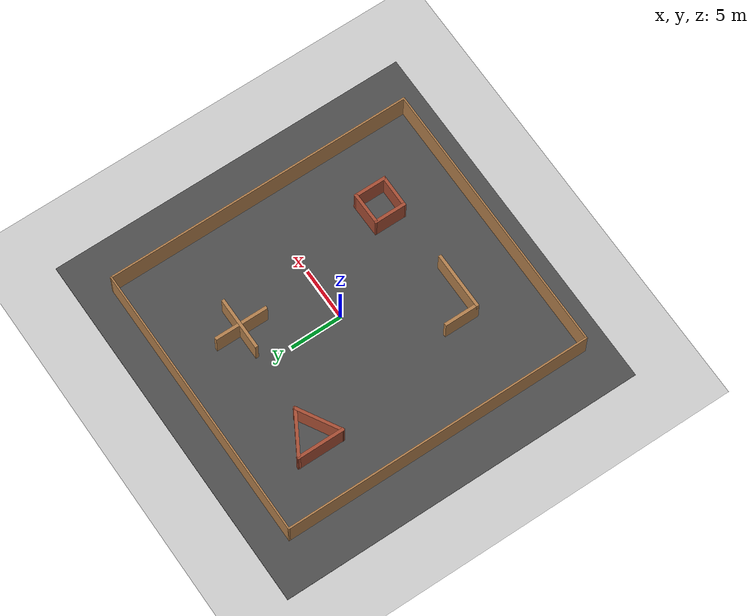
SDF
<sdf version="1.7">
 <world name="default">
  <light name="sun" type="directional">
   <pose>0 0 10 0 -0 0</pose>
   <diffuse>0.8 0.8 0.8 1</diffuse>
   <specular>0.2 0.2 0.2 1</specular>
   <attenuation>
    <range>1000</range>
    <constant>0.9</constant>
    <linear>0.01</linear>
    <quadratic>0.001</quadratic>
   </attenuation>
   <direction>-0.5 0.1 -0.9</direction>
   <spot><inner_angle>0</inner_angle><outer_angle>0</outer_angle><falloff>0</falloff></spot>
  </light>
  <model name="ground_plane">
   <static>1</static>
   <link name="link">
    <collision name="collision">
     <geometry><plane><normal>0 0 1</normal><size>409600 409600</size></plane></geometry>
     <surface><friction><ode><mu>100</mu><mu2>50</mu2></ode></friction></surface>
    </collision>
    <visual name="visual">
     <cast_shadows>0</cast_shadows>
     <geometry><plane><normal>0 0 1</normal><size>100 100</size></plane></geometry>
     <material>
      <script><uri>file://media/materials/scripts/gazebo.material</uri><name>Gazebo/Grey</name></script>
     </material>
    </visual>
    <velocity_decay><linear>0</linear><angular>0</angular></velocity_decay>
   </link>
  </model>
  <physics type="ode">
   <max_step_size>0.01</max_step_size>
   <real_time_factor>1</real_time_factor>
   <real_time_update_rate>100</real_time_update_rate>
  </physics>
  <scene><ambient>0.4 0.4 0.4 1</ambient><background>0.7 0.7 0.7 1</background><shadows>1</shadows></scene>
  <model name="asphalt_plane">
   <static>1</static>
   <link name="link">
    <collision name="collision"><geometry><box><size>35.5274 35.138 0.1</size></box></geometry></collision>
    <visual name="visual">
     <cast_shadows>0</cast_shadows>
     <geometry><box><size>35.5274 35.138 0.1</size></box></geometry>
     <material>
      <script>
       <uri>model://asphalt_plane/materials/scripts</uri>
       <uri>model://asphalt_plane/materials/textures</uri>
       <name>vrc/asphalt</name>
      </script>
     </material>
    </visual>
    <velocity_decay><linear>0</linear><angular>0</angular></velocity_decay>
   </link>
   <pose>-0.464139 0 0 0 -0 0</pose>
  </model>
  <gravity>0 0 -9.8</gravity>
  <magnetic_field>6e-06 2.3e-05 -4.2e-05</magnetic_field>
  <atmosphere type="adiabatic"/>
  <spherical_coordinates>
   <surface_model>EARTH_WGS84</surface_model>
   <latitude_deg>0</latitude_deg>
   <longitude_deg>0</longitude_deg>
   <elevation>0</elevation>
   <heading_deg>0</heading_deg>
  </spherical_coordinates>
  <model name="TCC_WALL_NEWENV">
   <pose>-0.61 -0.325 0 0 -0 0</pose>
   <link name="Wall_0">
    <collision name="Wall_0_Collision">
     <geometry><box><size>27 0.15 3</size></box></geometry>
     <pose>0 0 1.5 0 -0 0</pose>
    </collision>
    <visual name="Wall_0_Visual">
     <pose>0 0 1.5 0 -0 0</pose>
     <geometry><box><size>27 0.15 3</size></box></geometry>
     <material>
      <script><uri>file://media/materials/scripts/gazebo.material</uri><name>Gazebo/Wood</name></script>
      <ambient>1 1 1 1</ambient>
     </material>
     <meta><layer>0</layer></meta>
    </visual>
    <pose>0 -14.925 0 0 -0 0</pose>
   </link>
   <link name="Wall_4">
    <collision name="Wall_4_Collision">
     <geometry><box><size>30 0.15 3</size></box></geometry>
     <pose>0 0 1.5 0 -0 0</pose>
    </collision>
    <visual name="Wall_4_Visual">
     <pose>0 0 1.5 0 -0 0</pose>
     <geometry><box><size>30 0.15 3</size></box></geometry>
     <material>
      <script><uri>file://media/materials/scripts/gazebo.material</uri><name>Gazebo/Wood</name></script>
      <ambient>1 1 1 1</ambient>
     </material>
     <meta><layer>0</layer></meta>
    </visual>
    <pose>13.425 -0 0 0 -0 1.5708</pose>
   </link>
   <link name="Wall_6">
    <collision name="Wall_6_Collision">
     <geometry><box><size>27 0.15 3</size></box></geometry>
     <pose>0 0 1.5 0 -0 0</pose>
    </collision>
    <visual name="Wall_6_Visual">
     <pose>0 0 1.5 0 -0 0</pose>
     <geometry><box><size>27 0.15 3</size></box></geometry>
     <material>
      <script><uri>file://media/materials/scripts/gazebo.material</uri><name>Gazebo/Wood</name></script>
      <ambient>1 1 1 1</ambient>
     </material>
     <meta><layer>0</layer></meta>
    </visual>
    <pose>0 14.925 0 0 -0 3.14159</pose>
   </link>
   <link name="Wall_8">
    <collision name="Wall_8_Collision">
     <geometry><box><size>30.0003 0.15 3</size></box></geometry>
     <pose>0 0 1.5 0 -0 0</pose>
    </collision>
    <visual name="Wall_8_Visual">
     <pose>0 0 1.5 0 -0 0</pose>
     <geometry><box><size>30.0003 0.15 3</size></box></geometry>
     <material>
      <script><uri>file://media/materials/scripts/gazebo.material</uri><name>Gazebo/Wood</name></script>
      <ambient>1 1 1 1</ambient>
     </material>
     <meta><layer>0</layer></meta>
    </visual>
    <pose>-13.425 -0 0 0 -0 -1.5708</pose>
   </link>
   <static>1</static>
  </model>
  <model name="Obstacles_BigEnv">
   <pose>-0.787055 0.369097 0 0 -0 0</pose>
   <link name="Wall_12">
    <collision name="Wall_12_Collision">
     <geometry><box><size>3.15037 0.3 2.5</size></box></geometry>
     <pose>0 0 1.25 0 -0 0</pose>
    </collision>
    <visual name="Wall_12_Visual">
     <pose>0 0 1.25 0 -0 0</pose>
     <geometry><box><size>3.15037 0.3 2.5</size></box></geometry>
     <material>
      <script><uri>file://media/materials/scripts/gazebo.material</uri><name>Gazebo/Bricks</name></script>
      <ambient>1 1 1 1</ambient>
     </material>
     <meta><layer>0</layer></meta>
    </visual>
    <pose>5.53705 -8.6551 0 0 -0 1.5708</pose>
   </link>
   <link name="Wall_14">
    <collision name="Wall_14_Collision">
     <geometry><box><size>3.25123 0.3 2.5</size></box></geometry>
     <pose>0 0 1.25 0 -0 0</pose>
    </collision>
    <visual name="Wall_14_Visual">
     <pose>0 0 1.25 0 -0 0</pose>
     <geometry><box><size>3.25123 0.3 2.5</size></box></geometry>
     <material>
      <script><uri>file://media/materials/scripts/gazebo.material</uri><name>Gazebo/Bricks</name></script>
      <ambient>1 1 1 1</ambient>
     </material>
     <meta><layer>0</layer></meta>
    </visual>
    <pose>7.01255 -7.2116 0 0 -0 0.012537</pose>
   </link>
   <link name="Wall_17">
    <collision name="Wall_17_Collision">
     <geometry><box><size>3.201 0.3 2.5</size></box></geometry>
     <pose>0 0 1.25 0 -0 0</pose>
    </collision>
    <visual name="Wall_17_Visual">
     <pose>0 0 1.25 0 -0 0</pose>
     <geometry><box><size>3.201 0.3 2.5</size></box></geometry>
     <material>
      <script><uri>file://media/materials/scripts/gazebo.material</uri><name>Gazebo/Bricks</name></script>
      <ambient>1 1 1 1</ambient>
     </material>
     <meta><layer>0</layer></meta>
    </visual>
    <pose>8.48805 -8.6436 0 0 -0 -1.5708</pose>
   </link>
   <link name="Wall_19">
    <collision name="Wall_19_Collision">
     <geometry><box><size>3.25108 0.3 2.5</size></box></geometry>
     <pose>0 0 1.25 0 -0 0</pose>
    </collision>
    <visual name="Wall_19_Visual">
     <pose>0 0 1.25 0 -0 0</pose>
     <geometry><box><size>3.25108 0.3 2.5</size></box></geometry>
     <material>
      <script><uri>file://media/materials/scripts/gazebo.material</uri><name>Gazebo/Bricks</name></script>
      <ambient>1 1 1 1</ambient>
     </material>
     <meta><layer>0</layer></meta>
    </visual>
    <pose>7.01255 -10.0871 0 0 -0 -0.004744</pose>
   </link>
   <link name="Wall_22">
    <collision name="Wall_22_Collision">
     <geometry><box><size>5.599 0.3 2.5</size></box></geometry>
     <pose>0 0 1.25 0 -0 0</pose>
    </collision>
    <visual name="Wall_22_Visual">
     <pose>0 0 1.25 0 -0 0</pose>
     <geometry><box><size>5.599 0.3 2.5</size></box></geometry>
     <material>
      <script><uri>file://media/materials/scripts/gazebo.material</uri><name>Gazebo/Wood</name></script>
      <ambient>1 1 1 1</ambient>
     </material>
     <meta><layer>0</layer></meta>
    </visual>
    <pose>-2.86844 -9.9021 0 0 -0 3.14159</pose>
   </link>
   <link name="Wall_23">
    <collision name="Wall_23_Collision">
     <geometry><box><size>3.40015 0.3 2.5</size></box></geometry>
     <pose>0 0 1.25 0 -0 0</pose>
    </collision>
    <visual name="Wall_23_Visual">
     <pose>0 0 1.25 0 -0 0</pose>
     <geometry><box><size>3.40015 0.3 2.5</size></box></geometry>
     <material>
      <script><uri>file://media/materials/scripts/gazebo.material</uri><name>Gazebo/Wood</name></script>
      <ambient>1 1 1 1</ambient>
     </material>
     <meta><layer>0</layer></meta>
    </visual>
    <pose>-5.51795 -8.3521 0 0 -0 1.5708</pose>
   </link>
   <link name="Wall_29">
    <collision name="Wall_29_Collision">
     <geometry><box><size>4.65 0.3 2.5</size></box></geometry>
     <pose>0 0 1.25 0 -0 0</pose>
    </collision>
    <visual name="Wall_29_Visual">
     <pose>0 0 1.25 0 -0 0</pose>
     <geometry><box><size>4.65 0.3 2.5</size></box></geometry>
     <material>
      <script><uri>file://media/materials/scripts/gazebo.material</uri><name>Gazebo/Bricks</name></script>
      <ambient>1 1 1 1</ambient>
     </material>
     <meta><layer>0</layer></meta>
    </visual>
    <pose>-8.43495 7.8649 0 0 -0 1.5708</pose>
   </link>
   <link name="Wall_31">
    <collision name="Wall_31_Collision">
     <geometry><box><size>4.64999 0.3 2.5</size></box></geometry>
     <pose>0 0 1.25 0 -0 0</pose>
    </collision>
    <visual name="Wall_31_Visual">
     <pose>0 0 1.25 0 -0 0</pose>
     <geometry><box><size>4.64999 0.3 2.5</size></box></geometry>
     <material>
      <script><uri>file://media/materials/scripts/gazebo.material</uri><name>Gazebo/Bricks</name></script>
      <ambient>1 1 1 1</ambient>
     </material>
     <meta><layer>0</layer></meta>
    </visual>
    <pose>-6.55145 6.7774 0 0 -0 0.523623</pose>
   </link>
   <link name="Wall_33">
    <collision name="Wall_33_Collision">
     <geometry><box><size>4.64982 0.3 2.5</size></box></geometry>
     <pose>0 0 1.25 0 -0 0</pose>
    </collision>
    <visual name="Wall_33_Visual">
     <pose>0 0 1.25 0 -0 0</pose>
     <geometry><box><size>4.64982 0.3 2.5</size></box></geometry>
     <material>
      <script><uri>file://media/materials/scripts/gazebo.material</uri><name>Gazebo/Bricks</name></script>
      <ambient>1 1 1 1</ambient>
     </material>
     <meta><layer>0</layer></meta>
    </visual>
    <pose>-6.55145 8.9524 0 0 -0 -0.523623</pose>
   </link>
   <link name="Wall_35">
    <collision name="Wall_35_Collision">
     <geometry><box><size>5.15036 0.3 2.5</size></box></geometry>
     <pose>0 0 1.25 0 -0 0</pose>
    </collision>
    <visual name="Wall_35_Visual">
     <pose>0 0 1.25 0 -0 0</pose>
     <geometry><box><size>5.15036 0.3 2.5</size></box></geometry>
     <material>
      <script><uri>file://media/materials/scripts/gazebo.material</uri><name>Gazebo/Wood</name></script>
      <ambient>1 1 1 1</ambient>
     </material>
     <meta><layer>0</layer></meta>
    </visual>
    <pose>4.19405 7.3829 0 0 -0 1.5708</pose>
   </link>
   <link name="Wall_37">
    <collision name="Wall_37_Collision">
     <geometry><box><size>5.14995 0.3 2.5</size></box></geometry>
     <pose>0 0 1.25 0 -0 0</pose>
    </collision>
    <visual name="Wall_37_Visual">
     <pose>0 0 1.25 0 -0 0</pose>
     <geometry><box><size>5.14995 0.3 2.5</size></box></geometry>
     <material>
      <script><uri>file://media/materials/scripts/gazebo.material</uri><name>Gazebo/Wood</name></script>
      <ambient>1 1 1 1</ambient>
     </material>
     <meta><layer>0</layer></meta>
    </visual>
    <pose>4.23506 7.4939 0 0 -0 0</pose>
   </link>
   <static>1</static>
  </model>
 </world>
</sdf>
